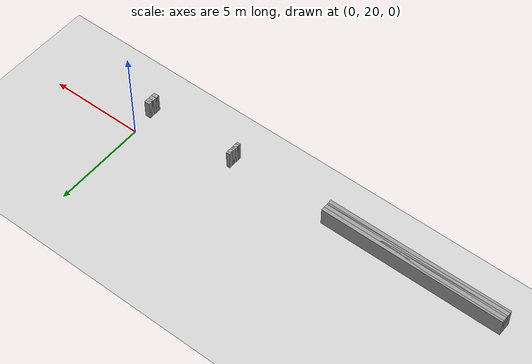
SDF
<sdf version="1.6">
 <world name="GridMap">
  <include><uri>model://sun</uri></include>
  <include><uri>model://ground_plane</uri></include>
  <model name="GridMap">
   <link name="Wall_(51.0,185.0)">
    <collision name="Wall_(51.0,185.0)_Collision">
     <geometry><box><size>0.2 0.2 1.0</size></box></geometry>
     <pose>-5.1000000000000005 18.5 0.5 0 -0 0</pose>
    </collision>
    <visual name="Wall_(51.0,185.0)_Visual">
     <geometry><box><size>0.2 0.2 1.0</size></box></geometry>
     <pose>-5.1000000000000005 18.5 0.5 0 -0 0</pose>
     <material>
      <script><uri>file://media/materials/scripts/gazebo.material</uri><name>Gazebo/Grey</name></script>
      <ambient>1 1 1 1</ambient>
     </material>
     <meta><layer>0</layer></meta>
    </visual>
    <pose>0 0 0.5 0 -0 0</pose>
   </link>
   <link name="Wall_(151.5,185.0)">
    <collision name="Wall_(151.5,185.0)_Collision">
     <geometry><box><size>9.5 0.2 1.0</size></box></geometry>
     <pose>-15.15 18.5 0.5 0 -0 0</pose>
    </collision>
    <visual name="Wall_(151.5,185.0)_Visual">
     <geometry><box><size>9.5 0.2 1.0</size></box></geometry>
     <pose>-15.15 18.5 0.5 0 -0 0</pose>
     <material>
      <script><uri>file://media/materials/scripts/gazebo.material</uri><name>Gazebo/Grey</name></script>
      <ambient>1 1 1 1</ambient>
     </material>
     <meta><layer>0</layer></meta>
    </visual>
    <pose>0 0 0.5 0 -0 0</pose>
   </link>
   <link name="Wall_(1.5,186.0)">
    <collision name="Wall_(1.5,186.0)_Collision">
     <geometry><box><size>0.30000000000000004 0.2 1.0</size></box></geometry>
     <pose>-0.15000000000000002 18.6 0.5 0 -0 0</pose>
    </collision>
    <visual name="Wall_(1.5,186.0)_Visual">
     <geometry><box><size>0.30000000000000004 0.2 1.0</size></box></geometry>
     <pose>-0.15000000000000002 18.6 0.5 0 -0 0</pose>
     <material>
      <script><uri>file://media/materials/scripts/gazebo.material</uri><name>Gazebo/Grey</name></script>
      <ambient>1 1 1 1</ambient>
     </material>
     <meta><layer>0</layer></meta>
    </visual>
    <pose>0 0 0.5 0 -0 0</pose>
   </link>
   <link name="Wall_(51.0,186.0)">
    <collision name="Wall_(51.0,186.0)_Collision">
     <geometry><box><size>0.2 0.2 1.0</size></box></geometry>
     <pose>-5.1000000000000005 18.6 0.5 0 -0 0</pose>
    </collision>
    <visual name="Wall_(51.0,186.0)_Visual">
     <geometry><box><size>0.2 0.2 1.0</size></box></geometry>
     <pose>-5.1000000000000005 18.6 0.5 0 -0 0</pose>
     <material>
      <script><uri>file://media/materials/scripts/gazebo.material</uri><name>Gazebo/Grey</name></script>
      <ambient>1 1 1 1</ambient>
     </material>
     <meta><layer>0</layer></meta>
    </visual>
    <pose>0 0 0.5 0 -0 0</pose>
   </link>
   <link name="Wall_(151.5,186.0)">
    <collision name="Wall_(151.5,186.0)_Collision">
     <geometry><box><size>9.5 0.2 1.0</size></box></geometry>
     <pose>-15.15 18.6 0.5 0 -0 0</pose>
    </collision>
    <visual name="Wall_(151.5,186.0)_Visual">
     <geometry><box><size>9.5 0.2 1.0</size></box></geometry>
     <pose>-15.15 18.6 0.5 0 -0 0</pose>
     <material>
      <script><uri>file://media/materials/scripts/gazebo.material</uri><name>Gazebo/Grey</name></script>
      <ambient>1 1 1 1</ambient>
     </material>
     <meta><layer>0</layer></meta>
    </visual>
    <pose>0 0 0.5 0 -0 0</pose>
   </link>
   <link name="Wall_(1.5,187.0)">
    <collision name="Wall_(1.5,187.0)_Collision">
     <geometry><box><size>0.30000000000000004 0.2 1.0</size></box></geometry>
     <pose>-0.15000000000000002 18.7 0.5 0 -0 0</pose>
    </collision>
    <visual name="Wall_(1.5,187.0)_Visual">
     <geometry><box><size>0.30000000000000004 0.2 1.0</size></box></geometry>
     <pose>-0.15000000000000002 18.7 0.5 0 -0 0</pose>
     <material>
      <script><uri>file://media/materials/scripts/gazebo.material</uri><name>Gazebo/Grey</name></script>
      <ambient>1 1 1 1</ambient>
     </material>
     <meta><layer>0</layer></meta>
    </visual>
    <pose>0 0 0.5 0 -0 0</pose>
   </link>
   <link name="Wall_(51.0,187.0)">
    <collision name="Wall_(51.0,187.0)_Collision">
     <geometry><box><size>0.2 0.2 1.0</size></box></geometry>
     <pose>-5.1000000000000005 18.7 0.5 0 -0 0</pose>
    </collision>
    <visual name="Wall_(51.0,187.0)_Visual">
     <geometry><box><size>0.2 0.2 1.0</size></box></geometry>
     <pose>-5.1000000000000005 18.7 0.5 0 -0 0</pose>
     <material>
      <script><uri>file://media/materials/scripts/gazebo.material</uri><name>Gazebo/Grey</name></script>
      <ambient>1 1 1 1</ambient>
     </material>
     <meta><layer>0</layer></meta>
    </visual>
    <pose>0 0 0.5 0 -0 0</pose>
   </link>
   <link name="Wall_(151.5,187.0)">
    <collision name="Wall_(151.5,187.0)_Collision">
     <geometry><box><size>9.5 0.2 1.0</size></box></geometry>
     <pose>-15.15 18.7 0.5 0 -0 0</pose>
    </collision>
    <visual name="Wall_(151.5,187.0)_Visual">
     <geometry><box><size>9.5 0.2 1.0</size></box></geometry>
     <pose>-15.15 18.7 0.5 0 -0 0</pose>
     <material>
      <script><uri>file://media/materials/scripts/gazebo.material</uri><name>Gazebo/Grey</name></script>
      <ambient>1 1 1 1</ambient>
     </material>
     <meta><layer>0</layer></meta>
    </visual>
    <pose>0 0 0.5 0 -0 0</pose>
   </link>
   <link name="Wall_(1.5,188.0)">
    <collision name="Wall_(1.5,188.0)_Collision">
     <geometry><box><size>0.30000000000000004 0.2 1.0</size></box></geometry>
     <pose>-0.15000000000000002 18.8 0.5 0 -0 0</pose>
    </collision>
    <visual name="Wall_(1.5,188.0)_Visual">
     <geometry><box><size>0.30000000000000004 0.2 1.0</size></box></geometry>
     <pose>-0.15000000000000002 18.8 0.5 0 -0 0</pose>
     <material>
      <script><uri>file://media/materials/scripts/gazebo.material</uri><name>Gazebo/Grey</name></script>
      <ambient>1 1 1 1</ambient>
     </material>
     <meta><layer>0</layer></meta>
    </visual>
    <pose>0 0 0.5 0 -0 0</pose>
   </link>
   <link name="Wall_(51.0,188.0)">
    <collision name="Wall_(51.0,188.0)_Collision">
     <geometry><box><size>0.2 0.2 1.0</size></box></geometry>
     <pose>-5.1000000000000005 18.8 0.5 0 -0 0</pose>
    </collision>
    <visual name="Wall_(51.0,188.0)_Visual">
     <geometry><box><size>0.2 0.2 1.0</size></box></geometry>
     <pose>-5.1000000000000005 18.8 0.5 0 -0 0</pose>
     <material>
      <script><uri>file://media/materials/scripts/gazebo.material</uri><name>Gazebo/Grey</name></script>
      <ambient>1 1 1 1</ambient>
     </material>
     <meta><layer>0</layer></meta>
    </visual>
    <pose>0 0 0.5 0 -0 0</pose>
   </link>
   <link name="Wall_(151.5,188.0)">
    <collision name="Wall_(151.5,188.0)_Collision">
     <geometry><box><size>9.5 0.2 1.0</size></box></geometry>
     <pose>-15.15 18.8 0.5 0 -0 0</pose>
    </collision>
    <visual name="Wall_(151.5,188.0)_Visual">
     <geometry><box><size>9.5 0.2 1.0</size></box></geometry>
     <pose>-15.15 18.8 0.5 0 -0 0</pose>
     <material>
      <script><uri>file://media/materials/scripts/gazebo.material</uri><name>Gazebo/Grey</name></script>
      <ambient>1 1 1 1</ambient>
     </material>
     <meta><layer>0</layer></meta>
    </visual>
    <pose>0 0 0.5 0 -0 0</pose>
   </link>
   <link name="Wall_(1.5,189.0)">
    <collision name="Wall_(1.5,189.0)_Collision">
     <geometry><box><size>0.30000000000000004 0.2 1.0</size></box></geometry>
     <pose>-0.15000000000000002 18.900000000000002 0.5 0 -0 0</pose>
    </collision>
    <visual name="Wall_(1.5,189.0)_Visual">
     <geometry><box><size>0.30000000000000004 0.2 1.0</size></box></geometry>
     <pose>-0.15000000000000002 18.900000000000002 0.5 0 -0 0</pose>
     <material>
      <script><uri>file://media/materials/scripts/gazebo.material</uri><name>Gazebo/Grey</name></script>
      <ambient>1 1 1 1</ambient>
     </material>
     <meta><layer>0</layer></meta>
    </visual>
    <pose>0 0 0.5 0 -0 0</pose>
   </link>
   <link name="Wall_(51.0,189.0)">
    <collision name="Wall_(51.0,189.0)_Collision">
     <geometry><box><size>0.2 0.2 1.0</size></box></geometry>
     <pose>-5.1000000000000005 18.900000000000002 0.5 0 -0 0</pose>
    </collision>
    <visual name="Wall_(51.0,189.0)_Visual">
     <geometry><box><size>0.2 0.2 1.0</size></box></geometry>
     <pose>-5.1000000000000005 18.900000000000002 0.5 0 -0 0</pose>
     <material>
      <script><uri>file://media/materials/scripts/gazebo.material</uri><name>Gazebo/Grey</name></script>
      <ambient>1 1 1 1</ambient>
     </material>
     <meta><layer>0</layer></meta>
    </visual>
    <pose>0 0 0.5 0 -0 0</pose>
   </link>
   <link name="Wall_(151.5,189.0)">
    <collision name="Wall_(151.5,189.0)_Collision">
     <geometry><box><size>9.5 0.2 1.0</size></box></geometry>
     <pose>-15.15 18.900000000000002 0.5 0 -0 0</pose>
    </collision>
    <visual name="Wall_(151.5,189.0)_Visual">
     <geometry><box><size>9.5 0.2 1.0</size></box></geometry>
     <pose>-15.15 18.900000000000002 0.5 0 -0 0</pose>
     <material>
      <script><uri>file://media/materials/scripts/gazebo.material</uri><name>Gazebo/Grey</name></script>
      <ambient>1 1 1 1</ambient>
     </material>
     <meta><layer>0</layer></meta>
    </visual>
    <pose>0 0 0.5 0 -0 0</pose>
   </link>
   <link name="Wall_(1.5,190.0)">
    <collision name="Wall_(1.5,190.0)_Collision">
     <geometry><box><size>0.30000000000000004 0.2 1.0</size></box></geometry>
     <pose>-0.15000000000000002 19.0 0.5 0 -0 0</pose>
    </collision>
    <visual name="Wall_(1.5,190.0)_Visual">
     <geometry><box><size>0.30000000000000004 0.2 1.0</size></box></geometry>
     <pose>-0.15000000000000002 19.0 0.5 0 -0 0</pose>
     <material>
      <script><uri>file://media/materials/scripts/gazebo.material</uri><name>Gazebo/Grey</name></script>
      <ambient>1 1 1 1</ambient>
     </material>
     <meta><layer>0</layer></meta>
    </visual>
    <pose>0 0 0.5 0 -0 0</pose>
   </link>
   <link name="Wall_(51.0,190.0)">
    <collision name="Wall_(51.0,190.0)_Collision">
     <geometry><box><size>0.2 0.2 1.0</size></box></geometry>
     <pose>-5.1000000000000005 19.0 0.5 0 -0 0</pose>
    </collision>
    <visual name="Wall_(51.0,190.0)_Visual">
     <geometry><box><size>0.2 0.2 1.0</size></box></geometry>
     <pose>-5.1000000000000005 19.0 0.5 0 -0 0</pose>
     <material>
      <script><uri>file://media/materials/scripts/gazebo.material</uri><name>Gazebo/Grey</name></script>
      <ambient>1 1 1 1</ambient>
     </material>
     <meta><layer>0</layer></meta>
    </visual>
    <pose>0 0 0.5 0 -0 0</pose>
   </link>
   <link name="Wall_(151.5,190.0)">
    <collision name="Wall_(151.5,190.0)_Collision">
     <geometry><box><size>9.5 0.2 1.0</size></box></geometry>
     <pose>-15.15 19.0 0.5 0 -0 0</pose>
    </collision>
    <visual name="Wall_(151.5,190.0)_Visual">
     <geometry><box><size>9.5 0.2 1.0</size></box></geometry>
     <pose>-15.15 19.0 0.5 0 -0 0</pose>
     <material>
      <script><uri>file://media/materials/scripts/gazebo.material</uri><name>Gazebo/Grey</name></script>
      <ambient>1 1 1 1</ambient>
     </material>
     <meta><layer>0</layer></meta>
    </visual>
    <pose>0 0 0.5 0 -0 0</pose>
   </link>
   <link name="Wall_(1.5,191.0)">
    <collision name="Wall_(1.5,191.0)_Collision">
     <geometry><box><size>0.30000000000000004 0.2 1.0</size></box></geometry>
     <pose>-0.15000000000000002 19.1 0.5 0 -0 0</pose>
    </collision>
    <visual name="Wall_(1.5,191.0)_Visual">
     <geometry><box><size>0.30000000000000004 0.2 1.0</size></box></geometry>
     <pose>-0.15000000000000002 19.1 0.5 0 -0 0</pose>
     <material>
      <script><uri>file://media/materials/scripts/gazebo.material</uri><name>Gazebo/Grey</name></script>
      <ambient>1 1 1 1</ambient>
     </material>
     <meta><layer>0</layer></meta>
    </visual>
    <pose>0 0 0.5 0 -0 0</pose>
   </link>
   <link name="Wall_(51.0,191.0)">
    <collision name="Wall_(51.0,191.0)_Collision">
     <geometry><box><size>0.2 0.2 1.0</size></box></geometry>
     <pose>-5.1000000000000005 19.1 0.5 0 -0 0</pose>
    </collision>
    <visual name="Wall_(51.0,191.0)_Visual">
     <geometry><box><size>0.2 0.2 1.0</size></box></geometry>
     <pose>-5.1000000000000005 19.1 0.5 0 -0 0</pose>
     <material>
      <script><uri>file://media/materials/scripts/gazebo.material</uri><name>Gazebo/Grey</name></script>
      <ambient>1 1 1 1</ambient>
     </material>
     <meta><layer>0</layer></meta>
    </visual>
    <pose>0 0 0.5 0 -0 0</pose>
   </link>
   <static>1</static>
  </model>
 </world>
</sdf>
